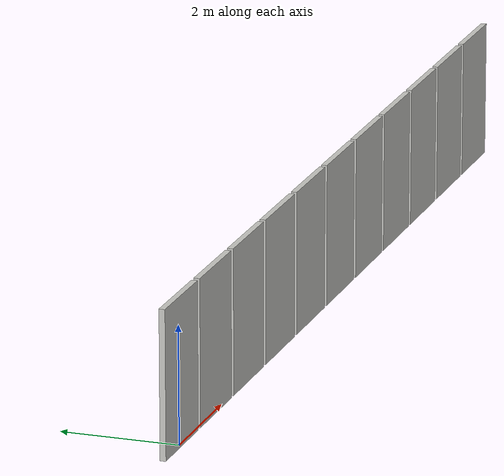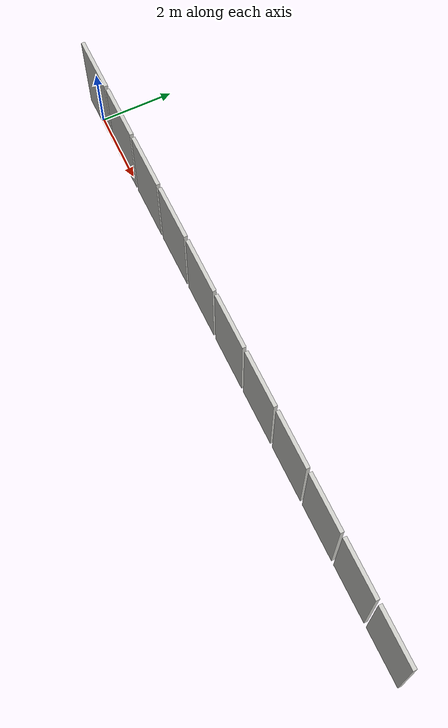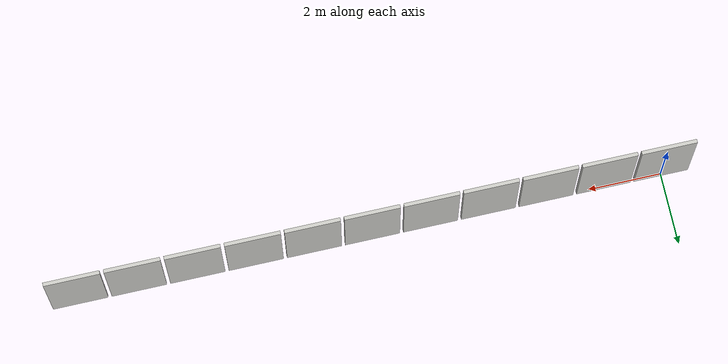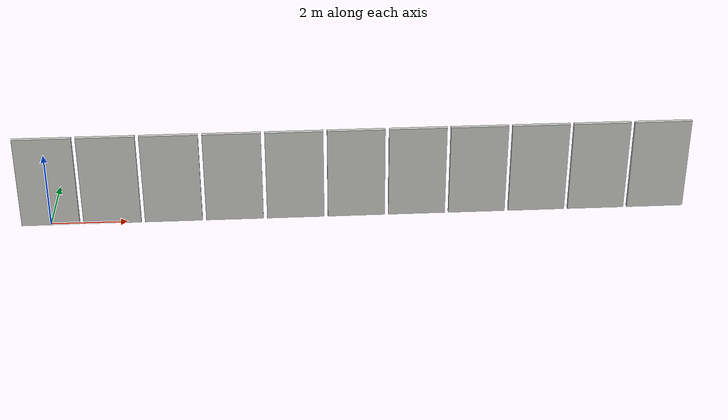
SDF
<?xml version="1.0" ?>
<sdf version="1.5">
  <model name="wall_outline">

    <include>
      <name>w1</name>
      <pose>0 0 0 0 0 0</pose>
      <uri>model://wall_unit_1_5</uri>
    </include>
    <include>
      <name>w2</name>
      <pose>1.6 0 0 0 0 0</pose>
      <uri>model://wall_unit_1_5</uri>
    </include>
    <include>
      <name>w3</name>
      <pose>3.2 0 0 0 0 0</pose>
      <uri>model://wall_unit_1_5</uri>
    </include>
    <include>
      <name>w4</name>
      <pose>4.8 0 0 0 0 0</pose>
      <uri>model://wall_unit_1_5</uri>
    </include>
    <include>
      <name>w5</name>
      <pose>6.4 0 0 0 0 0</pose>
      <uri>model://wall_unit_1_5</uri>
    </include>
    <include>
      <name>w6</name>
      <pose>8 0 0 0 0 0</pose>
      <uri>model://wall_unit_1_5</uri>
    </include>
    <include>
      <name>w7</name>
      <pose>9.6 0 0 0 0 0</pose>
      <uri>model://wall_unit_1_5</uri>
    </include>
    <include>
      <name>w8</name>
      <pose>11.2 0 0 0 0 0</pose>
      <uri>model://wall_unit_1_5</uri>
    </include>
    <include>
      <name>w9</name>
      <pose>12.8 0 0 0 0 0</pose>
      <uri>model://wall_unit_1_5</uri>
    </include>
    <include>
      <name>w10</name>
      <pose>14.4 0 0 0 0 0</pose>
      <uri>model://wall_unit_1_5</uri>
    </include>
    <include>
      <name>w11</name>
      <pose>16 0 0 0 0 0</pose>
      <uri>model://wall_unit_1_5</uri>
    </include>

  </model>
</sdf>

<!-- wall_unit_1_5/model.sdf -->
<sdf version='1.6'>
  <model name='wall_unit_1_5'>
    <pose frame=''>0 0 0 0 -0 0</pose>
    <link name='Wall_45'>
      <collision name='Wall_45_Collision'>
        <geometry>
          <box>
            <size>1.5 0.1 2.5</size>
          </box>
        </geometry>
        <pose frame=''>0 0 1.25 0 -0 0</pose>
      </collision>
      <visual name='Wall_45_Visual'>
        <pose frame=''>0 0 1.25 0 -0 0</pose>
        <geometry>
          <box>
            <size>1.5 0.1 2.5</size>
          </box>
        </geometry>
        <material>
          <script>
            <uri>file://media/materials/scripts/gazebo.material</uri>
            <name>Gazebo/CeilingTiled</name>
          </script>
          <ambient>1 1 1 1</ambient>
        </material>
        <meta>
          <layer>0</layer>
        </meta>
      </visual>
      <pose frame=''>0 0 0 0 -0 0</pose>
    </link>
    <static>1</static>
  </model>
</sdf>
